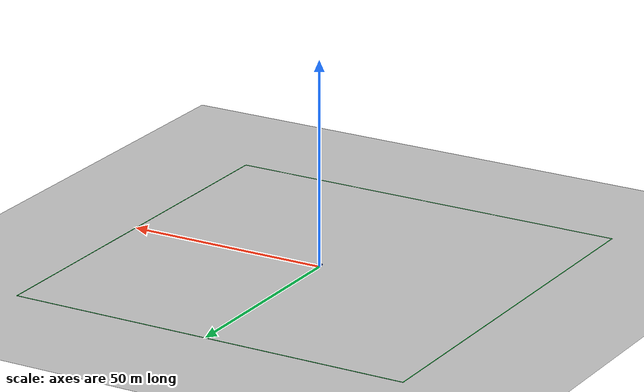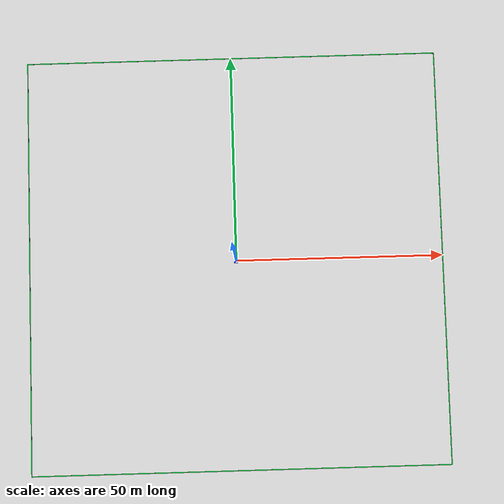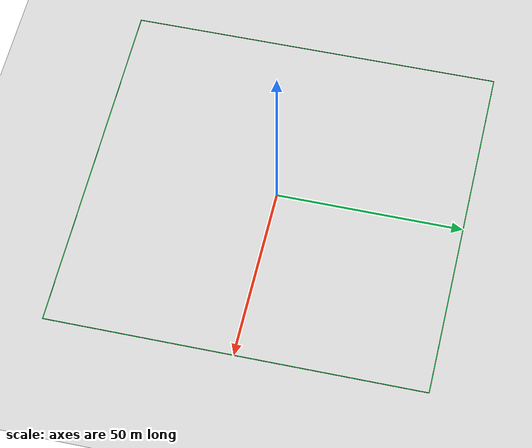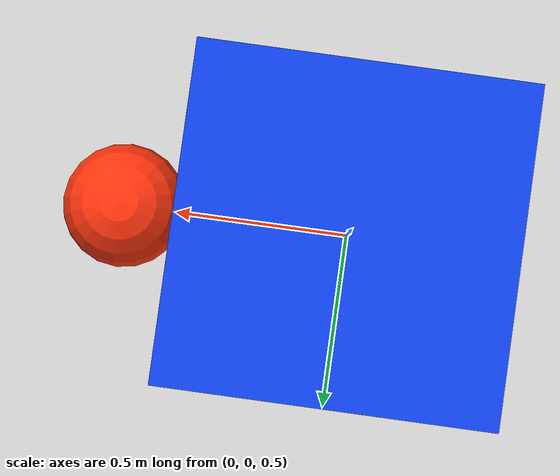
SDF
<?xml version="1.0"?>
<sdf version="1.6">
  <world name="uav_safety_demo">
    <plugin name="gazebo_ros_state" filename="libgazebo_ros_state.so">
      <ros>
        <namespace>/</namespace>
      </ros>
      <update_rate>20.0</update_rate>
    </plugin>

    <include>
      <uri>model://sun</uri>
    </include>

    <include>
      <uri>model://ground_plane</uri>
    </include>

    <include>
      <uri>model://safety_uav</uri>
      <name>safety_uav</name>
      <pose>0 0 0.5 0 0 0</pose>
    </include>

    <model name="geofence_marker">
      <static>true</static>
      <link name="link">
        <visual name="north">
          <pose>0 50 0.02 0 0 0</pose>
          <geometry>
            <box><size>100 0.2 0.04</size></box>
          </geometry>
          <material><ambient>0 0.8 0.2 1</ambient><diffuse>0 0.8 0.2 1</diffuse></material>
        </visual>
        <visual name="south">
          <pose>0 -50 0.02 0 0 0</pose>
          <geometry>
            <box><size>100 0.2 0.04</size></box>
          </geometry>
          <material><ambient>0 0.8 0.2 1</ambient><diffuse>0 0.8 0.2 1</diffuse></material>
        </visual>
        <visual name="east">
          <pose>50 0 0.02 0 0 0</pose>
          <geometry>
            <box><size>0.2 100 0.04</size></box>
          </geometry>
          <material><ambient>0 0.8 0.2 1</ambient><diffuse>0 0.8 0.2 1</diffuse></material>
        </visual>
        <visual name="west">
          <pose>-50 0 0.02 0 0 0</pose>
          <geometry>
            <box><size>0.2 100 0.04</size></box>
          </geometry>
          <material><ambient>0 0.8 0.2 1</ambient><diffuse>0 0.8 0.2 1</diffuse></material>
        </visual>
      </link>
    </model>
  </world>
</sdf>

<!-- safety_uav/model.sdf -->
<sdf version="1.6">
  <model name="safety_uav">
    <pose>0 0 0.5 0 0 0</pose>
    <static>false</static>
    <link name="base_link">
      <gravity>false</gravity>
      <inertial>
        <mass>1.5</mass>
        <inertia>
          <ixx>0.05</ixx>
          <iyy>0.05</iyy>
          <izz>0.08</izz>
          <ixy>0.0</ixy>
          <ixz>0.0</ixz>
          <iyz>0.0</iyz>
        </inertia>
      </inertial>
      <visual name="body_visual">
        <geometry>
          <box>
            <size>1.0 1.0 0.25</size>
          </box>
        </geometry>
        <material>
          <ambient>0.05 0.25 0.9 1.0</ambient>
          <diffuse>0.05 0.25 0.9 1.0</diffuse>
        </material>
      </visual>
      <visual name="front_marker">
        <pose>0.65 0 0 0 0 0</pose>
        <geometry>
          <sphere>
            <radius>0.18</radius>
          </sphere>
        </geometry>
        <material>
          <ambient>1.0 0.2 0.05 1.0</ambient>
          <diffuse>1.0 0.2 0.05 1.0</diffuse>
        </material>
      </visual>
      <collision name="body_collision">
        <geometry>
          <box>
            <size>1.0 1.0 0.25</size>
          </box>
        </geometry>
      </collision>
    </link>
  </model>
</sdf>
